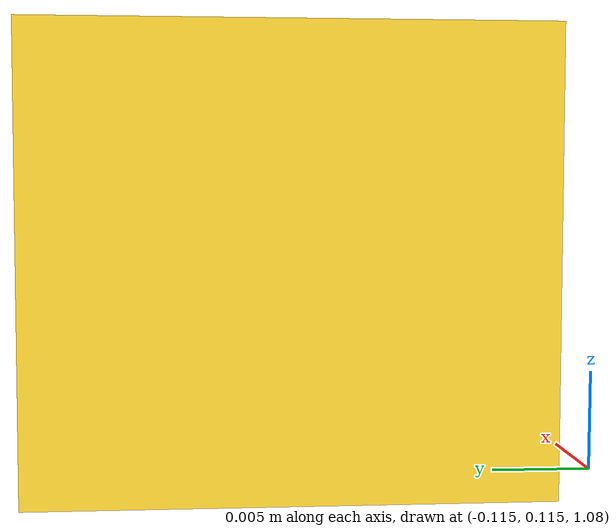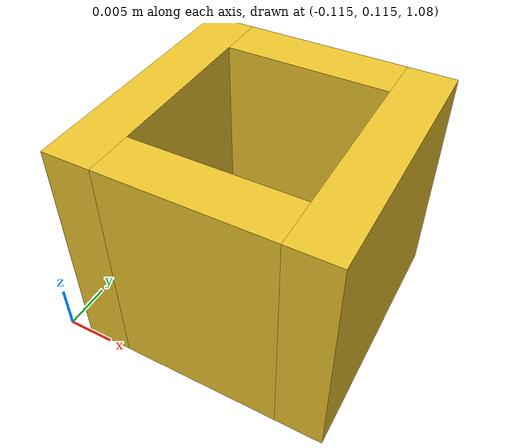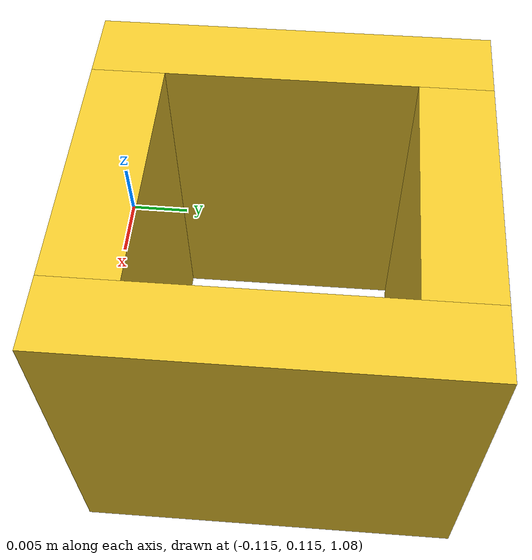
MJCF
<mujoco model="hanoi_disk_small">
  <asset>
    <material name="hanoi_disk_small_mat" rgba="0.92 0.77 0.17 1" specular="0.35" shininess="0.18"/>
    <material name="hanoi_disk_small_collision_mat" rgba="0.55 0.55 0.55 1" specular="0.0" shininess="0.0" reflectance="0.0"/>
  </asset>

  <worldbody>
    <body name="hanoi_disk_small" pos="-0.10 0.13 1.09035">
      <freejoint name="hanoi_disk_small_joint"/>

      <!-- Y-direction plates (cover only middle segment to avoid overlap with X plates) -->
      <geom name="hanoi_disk_small_visual_pos_y" type="box" pos="0 0.011295 0" size="0.00874 0.002555 0.012375"
            material="hanoi_disk_small_mat" contype="0" conaffinity="0" density="0" group="1"/>
      <geom name="hanoi_disk_small_visual_neg_y" type="box" pos="0 -0.011295 0" size="0.00874 0.002555 0.012375"
            material="hanoi_disk_small_mat" contype="0" conaffinity="0" density="0" group="1"/>

      <!-- X-direction plates (cover outer segments with thickness) -->
      <geom name="hanoi_disk_small_visual_pos_x" type="box" pos="0.011295 0 0" size="0.002555 0.01385 0.012375"
            material="hanoi_disk_small_mat" contype="0" conaffinity="0" density="0" group="1"/>
      <geom name="hanoi_disk_small_visual_neg_x" type="box" pos="-0.011295 0 0" size="0.002555 0.01385 0.012375"
            material="hanoi_disk_small_mat" contype="0" conaffinity="0" density="0" group="1"/>

      <!-- Collision geometry (identical to visual geometry) -->
      <geom name="hanoi_disk_small_collision_pos_y" type="box" pos="0 0.011295 0" size="0.00874 0.002555 0.012375"
            material="hanoi_disk_small_collision_mat" density="100" mass="0.025" friction="1.1 0.02 0.002" group="3"/>
      <geom name="hanoi_disk_small_collision_neg_y" type="box"  pos="0 -0.011295 0" size="0.00874 0.002555 0.012375"
            material="hanoi_disk_small_collision_mat" density="100" mass="0.025" friction="1.1 0.02 0.002" group="3"/>
      <geom name="hanoi_disk_small_collision_pos_x" type="box" pos="0.011295 0 0" size="0.002555 0.01385 0.012375"
            material="hanoi_disk_small_collision_mat" density="100" mass="0.025" friction="1.1 0.02 0.002" group="3"/>
      <geom name="hanoi_disk_small_collision_neg_x" type="box" pos="-0.011295 0 0" size="0.002555 0.01385 0.012375"
            material="hanoi_disk_small_collision_mat" density="100" mass="0.025" friction="1.1 0.02 0.002" group="3"/>

      <!-- Reference sites -->
      <site name="hanoi_disk_small_center_site" pos="0 0 0" size="0.002" rgba="0 0 0 0"/>
      <site name="hanoi_disk_small_top_site" pos="0 0 0.012375" size="0.002" rgba="0 0 0 0"/>
      <site name="hanoi_disk_small_bottom_site" pos="0 0 -0.012375" size="0.002" rgba="0 0 0 0"/>

    </body>
  </worldbody>
</mujoco>
